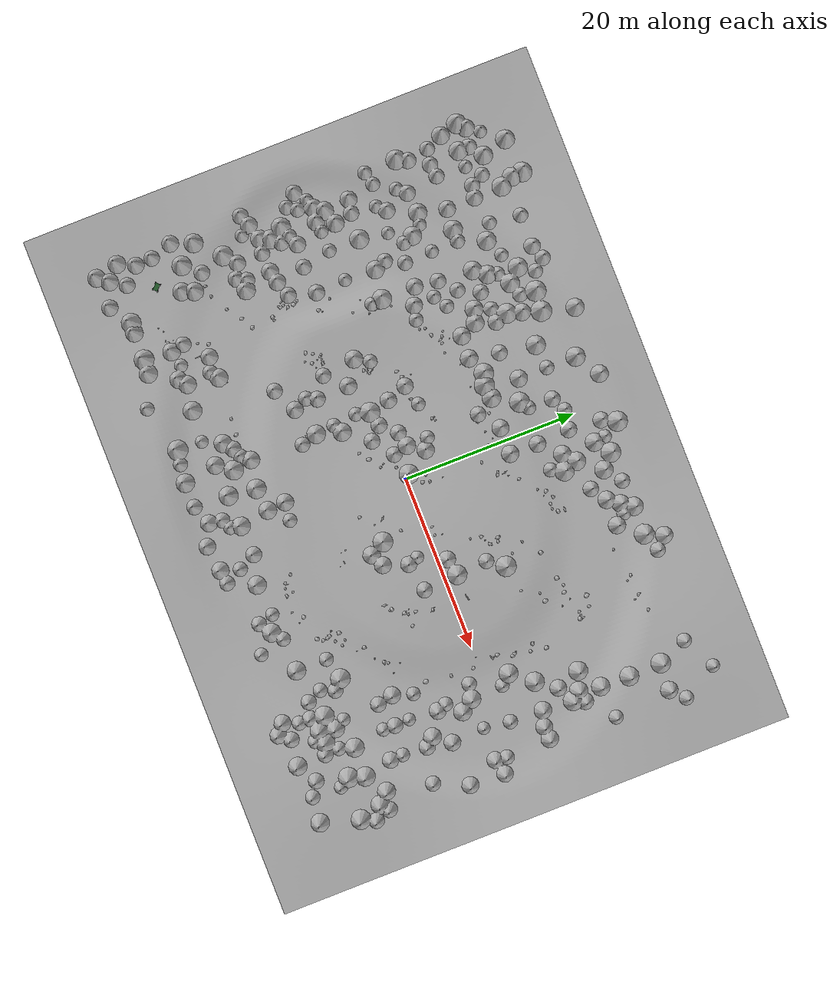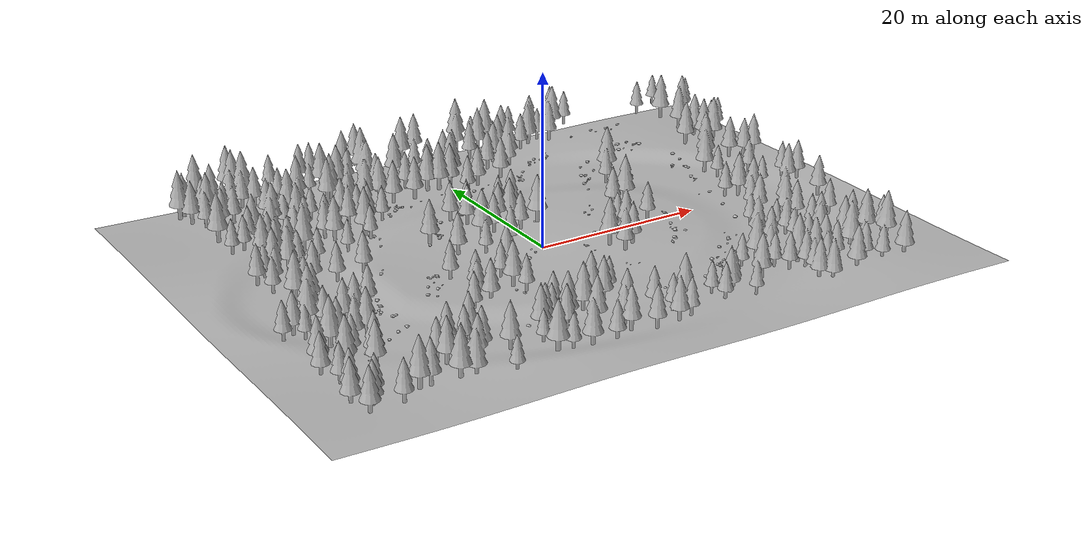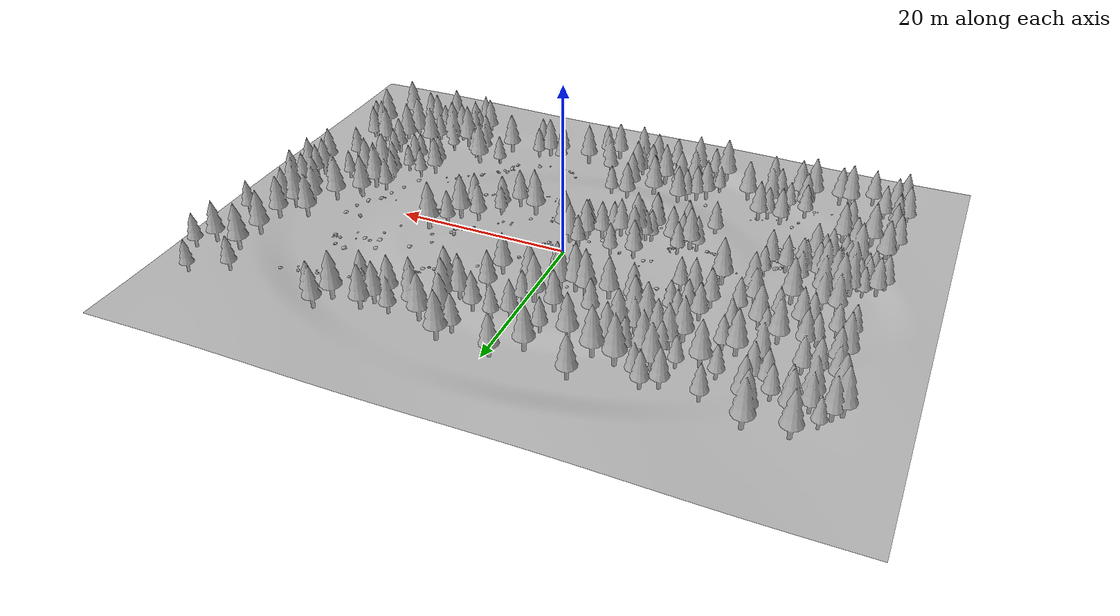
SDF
<sdf version="1.9">
 <world name="nomad_forest">
  <model name="terrain">
   <static>true</static>
   <link name="link">
    <visual name="dirt_terrain">
     <geometry><mesh><uri>../assets/geometry/terrain.obj</uri></mesh></geometry>
    </visual>
    <collision name="terrain_collision">
     <geometry><mesh><uri>../assets/geometry/terrain.obj</uri></mesh></geometry>
    </collision>
   </link>
  </model>
  <model name="roadside_details">
   <static>true</static>
   <link name="link">
    <visual name="visual_only">
     <geometry><mesh><uri>../assets/geometry/roadside_details.obj</uri></mesh></geometry>
    </visual>
   </link>
  </model>
  <model name="forest_far">
   <static>true</static>
   <link name="link">
    <visual name="visual_only">
     <geometry><mesh><uri>../assets/geometry/forest_far.obj</uri></mesh></geometry>
    </visual>
   </link>
  </model>
  <model name="tree_0000">
   <static>true</static>
   <pose>-32.226043951444034 -22.561121560247948 -0.09695232075887993 0 0 2.25313718157236</pose>
   <link name="link">
    <visual name="pine">
     <geometry>
      <mesh>
       <uri>../assets/models/pine_tree.obj</uri>
       <scale>1.1138156130767138 1.1138156130767138 1.1138156130767138</scale>
      </mesh>
     </geometry>
    </visual>
    <collision name="trunk">
     <pose>0 0 1.8656411519034957 0 0 0</pose>
     <geometry><box><size>0.44 0.44 3.7312823038069913</size></box></geometry>
    </collision>
   </link>
  </model>
  <model name="tree_0017">
   <static>true</static>
   <pose>-25.934130038540484 -22.030823622652274 0.17504397894948817 0 0 1.7514435841609088</pose>
   <link name="link">
    <visual name="pine">
     <geometry>
      <mesh>
       <uri>../assets/models/pine_tree.obj</uri>
       <scale>1.122600585121548 1.122600585121548 1.122600585121548</scale>
      </mesh>
     </geometry>
    </visual>
    <collision name="trunk">
     <pose>0 0 1.8803559800785927 0 0 0</pose>
     <geometry><box><size>0.44 0.44 3.7607119601571855</size></box></geometry>
    </collision>
   </link>
  </model>
  <model name="tree_0028">
   <static>true</static>
   <pose>-22.518766216160994 -18.9405773653081 0.15308021073727865 0 0 1.4262492252962382</pose>
   <link name="link">
    <visual name="pine">
     <geometry>
      <mesh>
       <uri>../assets/models/pine_tree.obj</uri>
       <scale>1.1458913713629457 1.1458913713629457 1.1458913713629457</scale>
      </mesh>
     </geometry>
    </visual>
    <collision name="trunk">
     <pose>0 0 1.9193680470329342 0 0 0</pose>
     <geometry><box><size>0.44 0.44 3.8387360940658684</size></box></geometry>
    </collision>
   </link>
  </model>
  <model name="tree_0029">
   <static>true</static>
   <pose>-22.48286110717729 -1.6471006049302637 3.0650650778708295 0 0 -1.3137019673913508</pose>
   <link name="link">
    <visual name="pine">
     <geometry>
      <mesh>
       <uri>../assets/models/pine_tree.obj</uri>
       <scale>1.0317757081542716 1.0317757081542716 1.0317757081542716</scale>
      </mesh>
     </geometry>
    </visual>
    <collision name="trunk">
     <pose>0 0 1.7282243111584048 0 0 0</pose>
     <geometry><box><size>0.44 0.44 3.4564486223168096</size></box></geometry>
    </collision>
   </link>
  </model>
  <model name="tree_0038">
   <static>true</static>
   <pose>-19.099051308219067 4.688584045351522 4.0956109040979305 0 0 1.0233060287015112</pose>
   <link name="link">
    <visual name="pine">
     <geometry>
      <mesh>
       <uri>../assets/models/pine_tree.obj</uri>
       <scale>1.2300304656711365 1.2300304656711365 1.2300304656711365</scale>
      </mesh>
     </geometry>
    </visual>
    <collision name="trunk">
     <pose>0 0 2.0603010299991538 0 0 0</pose>
     <geometry><box><size>0.44 0.44 4.1206020599983075</size></box></geometry>
    </collision>
   </link>
  </model>
  <model name="tree_0050">
   <static>true</static>
   <pose>-11.620429319413416 -8.597974119726413 -0.1385526412986445 0 0 1.7560091778610971</pose>
   <link name="link">
    <visual name="pine">
     <geometry>
      <mesh>
       <uri>../assets/models/pine_tree.obj</uri>
       <scale>1.0891174741979965 1.0891174741979965 1.0891174741979965</scale>
      </mesh>
     </geometry>
    </visual>
    <collision name="trunk">
     <pose>0 0 1.8242717692816441 0 0 0</pose>
     <geometry><box><size>0.44 0.44 3.6485435385632883</size></box></geometry>
    </collision>
   </link>
  </model>
  <model name="tree_0053">
   <static>true</static>
   <pose>-12.233607550173762 11.327495564412532 3.9964223456432064 0 0 -0.7573495232471299</pose>
   <link name="link">
    <visual name="pine">
     <geometry>
      <mesh>
       <uri>../assets/models/pine_tree.obj</uri>
       <scale>1.1085845054551755 1.1085845054551755 1.1085845054551755</scale>
      </mesh>
     </geometry>
    </visual>
    <collision name="trunk">
     <pose>0 0 1.856879046637419 0 0 0</pose>
     <geometry><box><size>0.44 0.44 3.713758093274838</size></box></geometry>
    </collision>
   </link>
  </model>
  <model name="tree_0065">
   <static>true</static>
   <pose>-5.019698506090619 -15.720630435875462 -0.07928766670003033 0 0 -0.7768563395972208</pose>
   <link name="link">
    <visual name="pine">
     <geometry>
      <mesh>
       <uri>../assets/models/pine_tree.obj</uri>
       <scale>1.243984195215945 1.243984195215945 1.243984195215945</scale>
      </mesh>
     </geometry>
    </visual>
    <collision name="trunk">
     <pose>0 0 2.0836735269867077 0 0 0</pose>
     <geometry><box><size>0.44 0.44 4.167347053973415</size></box></geometry>
    </collision>
   </link>
  </model>
  <model name="tree_0068">
   <static>true</static>
   <pose>-4.802965342162438 11.879200024307732 4.089483926855591 0 0 -1.357743328218155</pose>
   <link name="link">
    <visual name="pine">
     <geometry>
      <mesh>
       <uri>../assets/models/pine_tree.obj</uri>
       <scale>1.1766034608474223 1.1766034608474223 1.1766034608474223</scale>
      </mesh>
     </geometry>
    </visual>
    <collision name="trunk">
     <pose>0 0 1.9708107969194324 0 0 0</pose>
     <geometry><box><size>0.44 0.44 3.941621593838865</size></box></geometry>
    </collision>
   </link>
  </model>
  <model name="tree_0074">
   <static>true</static>
   <pose>-1.419795215101331 11.611543605977054 3.7308385244072015 0 0 -2.799157075199825</pose>
   <link name="link">
    <visual name="pine">
     <geometry>
      <mesh>
       <uri>../assets/models/pine_tree.obj</uri>
       <scale>1.0773390364673898 1.0773390364673898 1.0773390364673898</scale>
      </mesh>
     </geometry>
    </visual>
    <collision name="trunk">
     <pose>0 0 1.804542886082878 0 0 0</pose>
     <geometry><box><size>0.44 0.44 3.609085772165756</size></box></geometry>
    </collision>
   </link>
  </model>
  <model name="tree_0154">
   <static>true</static>
   <pose>-6.356132521814708 11.636028037471846 4.233290636250082 0 0 1.931778694469644</pose>
   <link name="link">
    <visual name="pine">
     <geometry>
      <mesh>
       <uri>../assets/models/pine_tree.obj</uri>
       <scale>1.2707191312738144 1.2707191312738144 1.2707191312738144</scale>
      </mesh>
     </geometry>
    </visual>
    <collision name="trunk">
     <pose>0 0 2.128454544883639 0 0 0</pose>
     <geometry><box><size>0.44 0.44 4.256909089767278</size></box></geometry>
    </collision>
   </link>
  </model>
  <model name="tree_0160">
   <static>true</static>
   <pose>-9.685070749091384 11.182210165610456 3.983878141788043 0 0 0.7946107344376528</pose>
   <link name="link">
    <visual name="pine">
     <geometry>
      <mesh>
       <uri>../assets/models/pine_tree.obj</uri>
       <scale>1.1105706846773957 1.1105706846773957 1.1105706846773957</scale>
      </mesh>
     </geometry>
    </visual>
    <collision name="trunk">
     <pose>0 0 1.860205896834638 0 0 0</pose>
     <geometry><box><size>0.44 0.44 3.720411793669276</size></box></geometry>
    </collision>
   </link>
  </model>
  <model name="tree_0163">
   <static>true</static>
   <pose>-17.958381655505868 -15.129194381648817 0.029776809875019673 0 0 -2.6073345384654654</pose>
   <link name="link">
    <visual name="pine">
     <geometry>
      <mesh>
       <uri>../assets/models/pine_tree.obj</uri>
       <scale>1.151262795606962 1.151262795606962 1.151262795606962</scale>
      </mesh>
     </geometry>
    </visual>
    <collision name="trunk">
     <pose>0 0 1.9283651826416615 0 0 0</pose>
     <geometry><box><size>0.44 0.44 3.856730365283323</size></box></geometry>
    </collision>
   </link>
  </model>
  <model name="tree_0165">
   <static>true</static>
   <pose>-29.54834840482915 -23.55740282877368 0.035276795590797314 0 0 -1.3106274725579228</pose>
   <link name="link">
    <visual name="pine">
     <geometry>
      <mesh>
       <uri>../assets/models/pine_tree.obj</uri>
       <scale>1.0537103158486423 1.0537103158486423 1.0537103158486423</scale>
      </mesh>
     </geometry>
    </visual>
    <collision name="trunk">
     <pose>0 0 1.7649647790464758 0 0 0</pose>
     <geometry><box><size>0.44 0.44 3.5299295580929515</size></box></geometry>
    </collision>
   </link>
  </model>
  <model name="tree_0183">
   <static>true</static>
   <pose>-28.33708616124009 -15.521181229560044 -0.13074560218709894 0 0 -2.6840625660481088</pose>
   <link name="link">
    <visual name="pine">
     <geometry>
      <mesh>
       <uri>../assets/models/pine_tree.obj</uri>
       <scale>1.1496535405558723 1.1496535405558723 1.1496535405558723</scale>
      </mesh>
     </geometry>
    </visual>
    <collision name="trunk">
     <pose>0 0 1.9256696804310862 0 0 0</pose>
     <geometry><box><size>0.44 0.44 3.8513393608621724</size></box></geometry>
    </collision>
   </link>
  </model>
  <model name="tree_0186">
   <static>true</static>
   <pose>-27.824025412930695 -14.181672228153468 -0.02799506630359654 0 0 1.7086709303909975</pose>
   <link name="link">
    <visual name="pine">
     <geometry>
      <mesh>
       <uri>../assets/models/pine_tree.obj</uri>
       <scale>1.1714612942632079 1.1714612942632079 1.1714612942632079</scale>
      </mesh>
     </geometry>
    </visual>
    <collision name="trunk">
     <pose>0 0 1.9621976678908732 0 0 0</pose>
     <geometry><box><size>0.44 0.44 3.9243953357817465</size></box></geometry>
    </collision>
   </link>
  </model>
  <model name="tree_0193">
   <static>true</static>
   <pose>-33.74157899140322 -14.775898882507773 -0.0014158623533813532 0 0 2.1563151794078284</pose>
   <link name="link">
    <visual name="pine">
     <geometry>
      <mesh>
       <uri>../assets/models/pine_tree.obj</uri>
       <scale>1.0817096314764492 1.0817096314764492 1.0817096314764492</scale>
      </mesh>
     </geometry>
    </visual>
    <collision name="trunk">
     <pose>0 0 1.8118636327230524 0 0 0</pose>
     <geometry><box><size>0.44 0.44 3.623727265446105</size></box></geometry>
    </collision>
   </link>
  </model>
  <model name="tree_0200">
   <static>true</static>
   <pose>-11.037143985253817 -17.338721346189022 -0.007577509590215678 0 0 -1.5973402352282648</pose>
   <link name="link">
    <visual name="pine">
     <geometry>
      <mesh>
       <uri>../assets/models/pine_tree.obj</uri>
       <scale>1.158121903623571 1.158121903623571 1.158121903623571</scale>
      </mesh>
     </geometry>
    </visual>
    <collision name="trunk">
     <pose>0 0 1.9398541885694816 0 0 0</pose>
     <geometry><box><size>0.44 0.44 3.879708377138963</size></box></geometry>
    </collision>
   </link>
  </model>
  <model name="tree_0204">
   <static>true</static>
   <pose>-3.3389950961844974 3.8438912418582234 3.911891913505878 0 0 -2.9592714107791727</pose>
   <link name="link">
    <visual name="pine">
     <geometry>
      <mesh>
       <uri>../assets/models/pine_tree.obj</uri>
       <scale>0.8801866071895028 0.8801866071895028 0.8801866071895028</scale>
      </mesh>
     </geometry>
    </visual>
    <collision name="trunk">
     <pose>0 0 1.4743125670424173 0 0 0</pose>
     <geometry><box><size>0.44 0.44 2.9486251340848346</size></box></geometry>
    </collision>
   </link>
  </model>
  <model name="tree_0209">
   <static>true</static>
   <pose>-0.43311243746486383 -13.53719587955047 0.19574211197388516 0 0 -3.0527752157441417</pose>
   <link name="link">
    <visual name="pine">
     <geometry>
      <mesh>
       <uri>../assets/models/pine_tree.obj</uri>
       <scale>0.8893685772365396 0.8893685772365396 0.8893685772365396</scale>
      </mesh>
     </geometry>
    </visual>
    <collision name="trunk">
     <pose>0 0 1.4896923668712039 0 0 0</pose>
     <geometry><box><size>0.44 0.44 2.9793847337424078</size></box></geometry>
    </collision>
   </link>
  </model>
  <model name="tree_0221">
   <static>true</static>
   <pose>-0.3782302625781142 0.5293858316961568 2.9773802008768047 0 0 2.572516854966049</pose>
   <link name="link">
    <visual name="pine">
     <geometry>
      <mesh>
       <uri>../assets/models/pine_tree.obj</uri>
       <scale>1.2361105122484934 1.2361105122484934 1.2361105122484934</scale>
      </mesh>
     </geometry>
    </visual>
    <collision name="trunk">
     <pose>0 0 2.0704851080162268 0 0 0</pose>
     <geometry><box><size>0.44 0.44 4.1409702160324535</size></box></geometry>
    </collision>
   </link>
  </model>
  <model name="tree_0229">
   <static>true</static>
   <pose>-32.88872304252759 -19.18450726880608 -0.0003221194657796545 0 0 -1.7573053295900034</pose>
   <link name="link">
    <visual name="pine">
     <geometry>
      <mesh>
       <uri>../assets/models/pine_tree.obj</uri>
       <scale>1.066333219316281 1.066333219316281 1.066333219316281</scale>
      </mesh>
     </geometry>
    </visual>
    <collision name="trunk">
     <pose>0 0 1.7861081423547704 0 0 0</pose>
     <geometry><box><size>0.44 0.44 3.572216284709541</size></box></geometry>
    </collision>
   </link>
  </model>
  <model name="tree_0245">
   <static>true</static>
   <pose>-9.437991093163316 3.610705145024802 3.9919677319809694 0 0 -0.5357036927552802</pose>
   <link name="link">
    <visual name="pine">
     <geometry>
      <mesh>
       <uri>../assets/models/pine_tree.obj</uri>
       <scale>1.039374079630504 1.039374079630504 1.039374079630504</scale>
      </mesh>
     </geometry>
    </visual>
    <collision name="trunk">
     <pose>0 0 1.7409515833810942 0 0 0</pose>
     <geometry><box><size>0.44 0.44 3.4819031667621885</size></box></geometry>
    </collision>
   </link>
  </model>
  <model name="tree_0252">
   <static>true</static>
   <pose>-7.084793809122566 4.235221321100525 4.169144691781634 0 0 2.004358106035706</pose>
   <link name="link">
    <visual name="pine">
     <geometry>
      <mesh>
       <uri>../assets/models/pine_tree.obj</uri>
       <scale>0.8672277417959914 0.8672277417959914 0.8672277417959914</scale>
      </mesh>
     </geometry>
    </visual>
    <collision name="trunk">
     <pose>0 0 1.4526064675082857 0 0 0</pose>
     <geometry><box><size>0.44 0.44 2.9052129350165714</size></box></geometry>
    </collision>
   </link>
  </model>
  <model name="tree_0261">
   <static>true</static>
   <pose>-8.222750139170515 -15.129617045349102 -0.05012301724507946 0 0 0.17329345892194384</pose>
   <link name="link">
    <visual name="pine">
     <geometry>
      <mesh>
       <uri>../assets/models/pine_tree.obj</uri>
       <scale>1.1227967411047184 1.1227967411047184 1.1227967411047184</scale>
      </mesh>
     </geometry>
    </visual>
    <collision name="trunk">
     <pose>0 0 1.8806845413504034 0 0 0</pose>
     <geometry><box><size>0.44 0.44 3.761369082700807</size></box></geometry>
    </collision>
   </link>
  </model>
  <model name="tree_0273">
   <static>true</static>
   <pose>-2.9563474061345545 -0.18543104724275494 2.9421909215964144 0 0 1.9271823305915559</pose>
   <link name="link">
    <visual name="pine">
     <geometry>
      <mesh>
       <uri>../assets/models/pine_tree.obj</uri>
       <scale>0.9943615370360425 0.9943615370360425 0.9943615370360425</scale>
      </mesh>
     </geometry>
    </visual>
    <collision name="trunk">
     <pose>0 0 1.6655555745353712 0 0 0</pose>
     <geometry><box><size>0.44 0.44 3.3311111490707423</size></box></geometry>
    </collision>
   </link>
  </model>
  <model name="tree_0275">
   <static>true</static>
   <pose>-14.171917027606987 -0.49818704656604496 3.8655794493307836 0 0 0.13516469960779587</pose>
   <link name="link">
    <visual name="pine">
     <geometry>
      <mesh>
       <uri>../assets/models/pine_tree.obj</uri>
       <scale>1.1322921190239197 1.1322921190239197 1.1322921190239197</scale>
      </mesh>
     </geometry>
    </visual>
    <collision name="trunk">
     <pose>0 0 1.8965892993650655 0 0 0</pose>
     <geometry><box><size>0.44 0.44 3.793178598730131</size></box></geometry>
    </collision>
   </link>
  </model>
  <model name="tree_0277">
   <static>true</static>
   <pose>-8.991725095162224 -16.06076126470056 0.04450593734617062 0 0 0.41359465813773816</pose>
   <link name="link">
    <visual name="pine">
     <geometry>
      <mesh>
       <uri>../assets/models/pine_tree.obj</uri>
       <scale>0.9380924798918167 0.9380924798918167 0.9380924798918167</scale>
      </mesh>
     </geometry>
    </visual>
    <collision name="trunk">
     <pose>0 0 1.571304903818793 0 0 0</pose>
     <geometry><box><size>0.44 0.44 3.142609807637586</size></box></geometry>
    </collision>
   </link>
  </model>
  <model name="tree_0280">
   <static>true</static>
   <pose>-7.603014382822209 12.059358467457841 4.21479123777655 0 0 0.2374595313123138</pose>
   <link name="link">
    <visual name="pine">
     <geometry>
      <mesh>
       <uri>../assets/models/pine_tree.obj</uri>
       <scale>1.2301006875345055 1.2301006875345055 1.2301006875345055</scale>
      </mesh>
     </geometry>
    </visual>
    <collision name="trunk">
     <pose>0 0 2.0604186516202967 0 0 0</pose>
     <geometry><box><size>0.44 0.44 4.120837303240593</size></box></geometry>
    </collision>
   </link>
  </model>
  <model name="tree_0281">
   <static>true</static>
   <pose>-19.045315011399893 3.480098189375692 4.144265652851487 0 0 -2.4092506175311525</pose>
   <link name="link">
    <visual name="pine">
     <geometry>
      <mesh>
       <uri>../assets/models/pine_tree.obj</uri>
       <scale>0.8695846764711289 0.8695846764711289 0.8695846764711289</scale>
      </mesh>
     </geometry>
    </visual>
    <collision name="trunk">
     <pose>0 0 1.456554333089141 0 0 0</pose>
     <geometry><box><size>0.44 0.44 2.913108666178282</size></box></geometry>
    </collision>
   </link>
  </model>
  <model name="tree_0283">
   <static>true</static>
   <pose>-8.22940138935105 -7.36658058096274 0.2771501273295197 0 0 0.5147651990530061</pose>
   <link name="link">
    <visual name="pine">
     <geometry>
      <mesh>
       <uri>../assets/models/pine_tree.obj</uri>
       <scale>1.1844261345466247 1.1844261345466247 1.1844261345466247</scale>
      </mesh>
     </geometry>
    </visual>
    <collision name="trunk">
     <pose>0 0 1.9839137753655964 0 0 0</pose>
     <geometry><box><size>0.44 0.44 3.967827550731193</size></box></geometry>
    </collision>
   </link>
  </model>
  <model name="tree_0287">
   <static>true</static>
   <pose>-3.685613750741208 9.894889708916992 3.9286841911547703 0 0 0.15053900421600067</pose>
   <link name="link">
    <visual name="pine">
     <geometry>
      <mesh>
       <uri>../assets/models/pine_tree.obj</uri>
       <scale>0.9768996422554924 0.9768996422554924 0.9768996422554924</scale>
      </mesh>
     </geometry>
    </visual>
    <collision name="trunk">
     <pose>0 0 1.6363069007779498 0 0 0</pose>
     <geometry><box><size>0.44 0.44 3.2726138015558996</size></box></geometry>
    </collision>
   </link>
  </model>
  <model name="tree_0291">
   <static>true</static>
   <pose>-18.880832502775483 -15.826169877578055 -0.012432441626983419 0 0 -1.5027717501209612</pose>
   <link name="link">
    <visual name="pine">
     <geometry>
      <mesh>
       <uri>../assets/models/pine_tree.obj</uri>
       <scale>0.9503446663450922 0.9503446663450922 0.9503446663450922</scale>
      </mesh>
     </geometry>
    </visual>
    <collision name="trunk">
     <pose>0 0 1.5918273161280294 0 0 0</pose>
     <geometry><box><size>0.44 0.44 3.183654632256059</size></box></geometry>
    </collision>
   </link>
  </model>
  <model name="tree_0295">
   <static>true</static>
   <pose>-27.073069382704844 -21.941569875839846 0.11496270100700345 0 0 2.623065559980733</pose>
   <link name="link">
    <visual name="pine">
     <geometry>
      <mesh>
       <uri>../assets/models/pine_tree.obj</uri>
       <scale>1.2617071494964078 1.2617071494964078 1.2617071494964078</scale>
      </mesh>
     </geometry>
    </visual>
    <collision name="trunk">
     <pose>0 0 2.113359475406483 0 0 0</pose>
     <geometry><box><size>0.44 0.44 4.226718950812966</size></box></geometry>
    </collision>
   </link>
  </model>
  <model name="tree_0297">
   <static>true</static>
   <pose>-13.305088673983086 1.0619412852586407 3.9682217594262927 0 0 2.1067880381463815</pose>
   <link name="link">
    <visual name="pine">
     <geometry>
      <mesh>
       <uri>../assets/models/pine_tree.obj</uri>
       <scale>0.886899224436521 0.886899224436521 0.886899224436521</scale>
      </mesh>
     </geometry>
    </visual>
    <collision name="trunk">
     <pose>0 0 1.4855562009311727 0 0 0</pose>
     <geometry><box><size>0.44 0.44 2.9711124018623454</size></box></geometry>
    </collision>
   </link>
  </model>
  <model name="tree_0298">
   <static>true</static>
   <pose>-30.962118093620532 -14.441665834368738 0.14139437482535913 0 0 -0.2558724632950698</pose>
   <link name="link">
    <visual name="pine">
     <geometry>
      <mesh>
       <uri>../assets/models/pine_tree.obj</uri>
       <scale>1.256068171288517 1.256068171288517 1.256068171288517</scale>
      </mesh>
     </geometry>
    </visual>
    <collision name="trunk">
     <pose>0 0 2.1039141869082663 0 0 0</pose>
     <geometry><box><size>0.44 0.44 4.2078283738165325</size></box></geometry>
    </collision>
   </link>
  </model>
  <model name="tree_0300">
   <static>true</static>
   <pose>-23.598175071730665 -4.668910836371573 0.8394892864462182 0 0 -2.861231368967082</pose>
   <link name="link">
    <visual name="pine">
     <geometry>
      <mesh>
       <uri>../assets/models/pine_tree.obj</uri>
       <scale>1.026101345025614 1.026101345025614 1.026101345025614</scale>
      </mesh>
     </geometry>
    </visual>
    <collision name="trunk">
     <pose>0 0 1.7187197529179035 0 0 0</pose>
     <geometry><box><size>0.44 0.44 3.437439505835807</size></box></geometry>
    </collision>
   </link>
  </model>
  <model name="tree_0302">
   <static>true</static>
   <pose>-15.68889339869482 7.346892644962164 4.102718876038232 0 0 2.4852001537631585</pose>
   <link name="link">
    <visual name="pine">
     <geometry>
      <mesh>
       <uri>../assets/models/pine_tree.obj</uri>
       <scale>0.8862580114573999 0.8862580114573999 0.8862580114573999</scale>
      </mesh>
     </geometry>
    </visual>
    <collision name="trunk">
     <pose>0 0 1.484482169191145 0 0 0</pose>
     <geometry><box><size>0.44 0.44 2.96896433838229</size></box></geometry>
    </collision>
   </link>
  </model>
  <model name="tree_0316">
   <static>true</static>
   <pose>-14.371851940691304 -9.94037674798663 0.0042100854453518514 0 0 -3.027022033984559</pose>
   <link name="link">
    <visual name="pine">
     <geometry>
      <mesh>
       <uri>../assets/models/pine_tree.obj</uri>
       <scale>0.997543058138304 0.997543058138304 0.997543058138304</scale>
      </mesh>
     </geometry>
    </visual>
    <collision name="trunk">
     <pose>0 0 1.6708846223816594 0 0 0</pose>
     <geometry><box><size>0.44 0.44 3.3417692447633187</size></box></geometry>
    </collision>
   </link>
  </model>
  <model name="tree_0318">
   <static>true</static>
   <pose>-20.496515190540844 -15.287325860977838 -0.05087253280573681 0 0 -1.0226201070816654</pose>
   <link name="link">
    <visual name="pine">
     <geometry>
      <mesh>
       <uri>../assets/models/pine_tree.obj</uri>
       <scale>1.081321068781662 1.081321068781662 1.081321068781662</scale>
      </mesh>
     </geometry>
    </visual>
    <collision name="trunk">
     <pose>0 0 1.8112127902092838 0 0 0</pose>
     <geometry><box><size>0.44 0.44 3.6224255804185677</size></box></geometry>
    </collision>
   </link>
  </model>
  <model name="tree_0320">
   <static>true</static>
   <pose>-7.84131415963461 -17.267397451396178 0.14140763845547888 0 0 1.487243527459072</pose>
   <link name="link">
    <visual name="pine">
     <geometry>
      <mesh>
       <uri>../assets/models/pine_tree.obj</uri>
       <scale>1.2567240841598248 1.2567240841598248 1.2567240841598248</scale>
      </mesh>
     </geometry>
    </visual>
    <collision name="trunk">
     <pose>0 0 2.1050128409677065 0 0 0</pose>
     <geometry><box><size>0.44 0.44 4.210025681935413</size></box></geometry>
    </collision>
   </link>
  </model>
  <model name="tree_0323">
   <static>true</static>
   <pose>-32.9709746034084 -17.26113158315733 0.16502849702123606 0 0 -2.322003535072574</pose>
   <link name="link">
    <visual name="pine">
     <geometry>
      <mesh>
       <uri>../assets/models/pine_tree.obj</uri>
       <scale>0.9954905528110549 0.9954905528110549 0.9954905528110549</scale>
      </mesh>
     </geometry>
    </visual>
    <collision name="trunk">
     <pose>0 0 1.667446675958517 0 0 0</pose>
     <geometry><box><size>0.44 0.44 3.334893351917034</size></box></geometry>
    </collision>
   </link>
  </model>
  <model name="tree_0329">
   <static>true</static>
   <pose>-2.141751199070889 3.162279234375184 3.8089648917734475 0 0 3.0395195069399716</pose>
   <link name="link">
    <visual name="pine">
     <geometry>
      <mesh>
       <uri>../assets/models/pine_tree.obj</uri>
       <scale>1.0776731501192607 1.0776731501192607 1.0776731501192607</scale>
      </mesh>
     </geometry>
    </visual>
    <collision name="trunk">
     <pose>0 0 1.8051025264497618 0 0 0</pose>
     <geometry><box><size>0.44 0.44 3.6102050528995235</size></box></geometry>
    </collision>
   </link>
  </model>
  <model name="tree_0331">
   <static>true</static>
   <pose>-22.827673427948454 -17.47710990370961 0.15524398674684042 0 0 1.9969668566654293</pose>
   <link name="link">
    <visual name="pine">
     <geometry>
      <mesh>
       <uri>../assets/models/pine_tree.obj</uri>
       <scale>0.9993889510847944 0.9993889510847944 0.9993889510847944</scale>
      </mesh>
     </geometry>
    </visual>
    <collision name="trunk">
     <pose>0 0 1.6739764930670307 0 0 0</pose>
     <geometry><box><size>0.44 0.44 3.3479529861340613</size></box></geometry>
    </collision>
   </link>
  </model>
  <model name="tree_0337">
   <static>true</static>
   <pose>-7.714109375723751 -9.209749433843996 0.25026371495876454 0 0 -2.4087028474922034</pose>
   <link name="link">
    <visual name="pine">
     <geometry>
      <mesh>
       <uri>../assets/models/pine_tree.obj</uri>
       <scale>0.9534512726954694 0.9534512726954694 0.9534512726954694</scale>
      </mesh>
     </geometry>
    </visual>
    <collision name="trunk">
     <pose>0 0 1.5970308817649113 0 0 0</pose>
     <geometry><box><size>0.44 0.44 3.1940617635298225</size></box></geometry>
    </collision>
   </link>
  </model>
  <model name="tree_0345">
   <static>true</static>
   <pose>-33.78018969723969 -21.103047814257245 -0.2021612891585221 0 0 -3.122767960763536</pose>
   <link name="link">
    <visual name="pine">
     <geometry>
      <mesh>
       <uri>../assets/models/pine_tree.obj</uri>
       <scale>1.1455004027351812 1.1455004027351812 1.1455004027351812</scale>
      </mesh>
     </geometry>
    </visual>
    <collision name="trunk">
     <pose>0 0 1.9187131745814285 0 0 0</pose>
     <geometry><box><size>0.44 0.44 3.837426349162857</size></box></geometry>
    </collision>
   </link>
  </model>
  <model name="tree_0348">
   <static>true</static>
   <pose>-2.4834005429512587 -13.297723424988108 0.22657079476548514 0 0 0.7175098477745547</pose>
   <link name="link">
    <visual name="pine">
     <geometry>
      <mesh>
       <uri>../assets/models/pine_tree.obj</uri>
       <scale>1.1008344630947695 1.1008344630947695 1.1008344630947695</scale>
      </mesh>
     </geometry>
    </visual>
    <collision name="trunk">
     <pose>0 0 1.843897725683739 0 0 0</pose>
     <geometry><box><size>0.44 0.44 3.687795451367478</size></box></geometry>
    </collision>
   </link>
  </model>
  <model name="tree_0349">
   <static>true</static>
   <pose>-10.067321174208992 -16.554049086593103 0.054293416676159036 0 0 -0.8751207920142797</pose>
   <link name="link">
    <visual name="pine">
     <geometry>
      <mesh>
       <uri>../assets/models/pine_tree.obj</uri>
       <scale>1.0400497252040637 1.0400497252040637 1.0400497252040637</scale>
      </mesh>
     </geometry>
    </visual>
    <collision name="trunk">
     <pose>0 0 1.7420832897168068 0 0 0</pose>
     <geometry><box><size>0.44 0.44 3.4841665794336136</size></box></geometry>
    </collision>
   </link>
  </model>
  <model name="tree_0353">
   <static>true</static>
   <pose>-31.20306570790449 -20.900441483256223 -0.050407003665946123 0 0 -0.7164782885340357</pose>
   <link name="link">
    <visual name="pine">
     <geometry>
      <mesh>
       <uri>../assets/models/pine_tree.obj</uri>
       <scale>1.0176869600422331 1.0176869600422331 1.0176869600422331</scale>
      </mesh>
     </geometry>
    </visual>
    <collision name="trunk">
     <pose>0 0 1.7046256580707406 0 0 0</pose>
     <geometry><box><size>0.44 0.44 3.4092513161414812</size></box></geometry>
    </collision>
   </link>
  </model>
  <model name="tree_0354">
   <static>true</static>
   <pose>-13.905262839968987 -4.284399107379059 1.2567524788280195 0 0 0.6227342164440646</pose>
   <link name="link">
    <visual name="pine">
     <geometry>
      <mesh>
       <uri>../assets/models/pine_tree.obj</uri>
       <scale>0.9836410278661363 0.9836410278661363 0.9836410278661363</scale>
      </mesh>
     </geometry>
    </visual>
    <collision name="trunk">
     <pose>0 0 1.6475987216757784 0 0 0</pose>
     <geometry><box><size>0.44 0.44 3.2951974433515567</size></box></geometry>
    </collision>
   </link>
  </model>
  <model name="tree_0356">
   <static>true</static>
   <pose>-17.23574183890944 7.718068570213163 3.85296415212899 0 0 -0.22437887330675302</pose>
   <link name="link">
    <visual name="pine">
     <geometry>
      <mesh>
       <uri>../assets/models/pine_tree.obj</uri>
       <scale>1.0610654472164855 1.0610654472164855 1.0610654472164855</scale>
      </mesh>
     </geometry>
    </visual>
    <collision name="trunk">
     <pose>0 0 1.7772846240876132 0 0 0</pose>
     <geometry><box><size>0.44 0.44 3.5545692481752265</size></box></geometry>
    </collision>
   </link>
  </model>
  <include>
   <uri>../models/nomad_vehicle/model.sdf</uri>
   <name>nomad_vehicle</name>
   <pose>-30.0 -18.0 0.03 0 0 -0.7705162004864949</pose>
  </include>
 </world>
</sdf>
